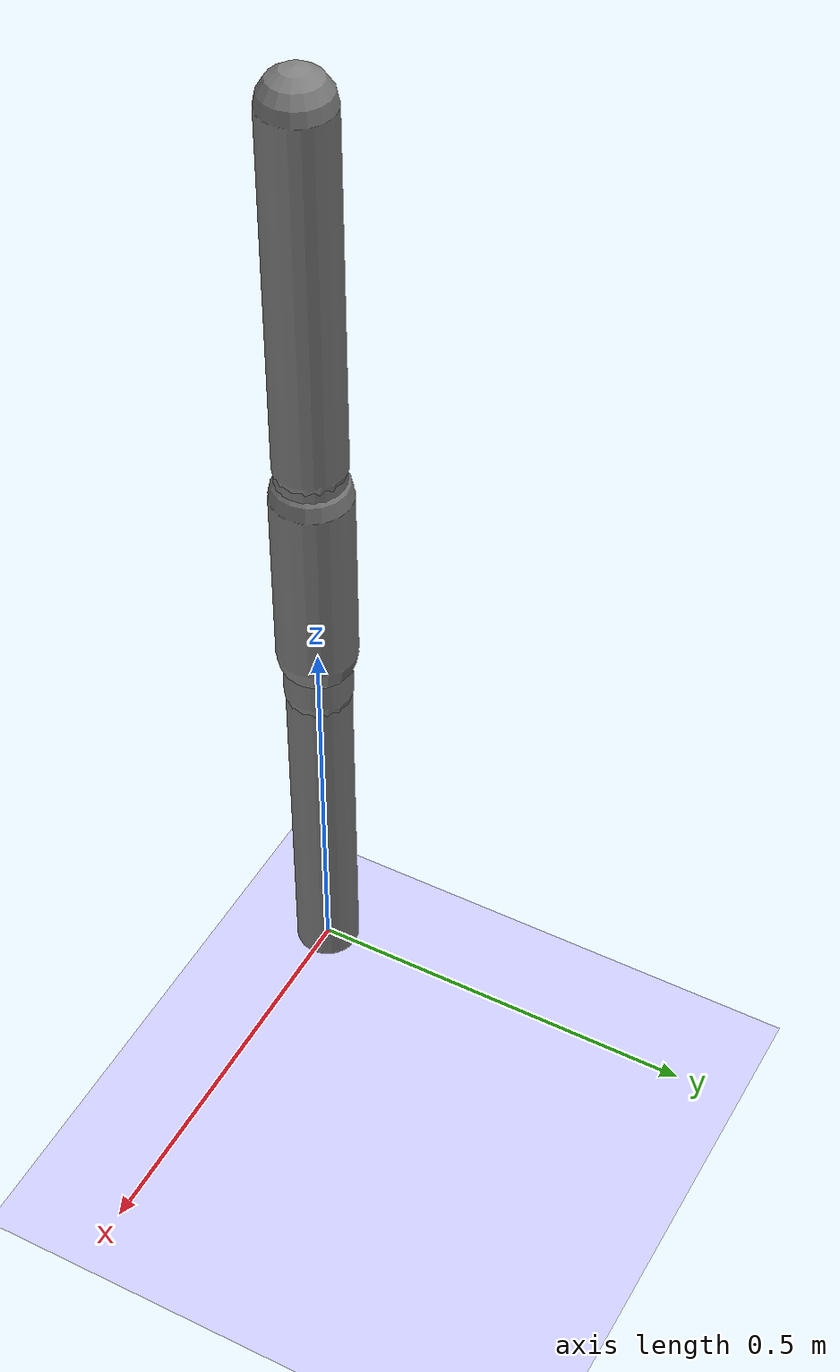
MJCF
<?xml version='1.0' encoding='UTF-8'?>
<mujoco model="robot_model">
  <worldbody>
    <light name="light" pos="0 -3 10" dir="0 0.5 -1" diffuse=".8 .8 .8" specular="0.1 0.1 0.1"/>
    <geom name="floor" type="plane" size="10.0 10.0 0.1" pos="0 0 0" rgba="0.8 0.8 1 1" contype="2" conaffinity="1"/>
    <body name="limb0" pos="0 0 0">
      <geom type="capsule" fromto="0 0 0 0 0 0.5389310855862122" size="0.04" density="1042.7771761579759" contype="1" conaffinity="2"/>
      <site type="sphere" size="0.01" name="limb0_site0" pos="0 0 0.3484966611289094"/>
      <freejoint name="limb0_root"/>
      <body name="limb1" pos="0 0 0.3484966611289094">
        <geom type="capsule" fromto="0 0 0 0 0 0.2639757366326131" size="0.03303782304059255" density="616.6153958948047" contype="1" conaffinity="2"/>
        <site type="sphere" size="0.01" name="limb1_site0" pos="0 0 0.16469519644951955"/>
        <site type="sphere" size="0.01" name="limb1_site1" pos="0 0 0.10105994540977413"/>
        <body name="limb2" pos="0 0 0.16469519644951955">
          <geom type="capsule" fromto="0 0 0 0 0 0.23785756650714102" size="0.049138871714439904" density="645.8772761445443" contype="1" conaffinity="2"/>
          <joint name="joint_limb1_limb2_0" type="hinge" axis="0 1 0" range="-79.19027832141104 79.19027832141104" damping="5.0"/>
        </body>
        <body name="limb3" pos="0 0 0.10105994540977413">
          <geom type="capsule" fromto="0 0 0 0 0 0.3449366956007403" size="0.04182995516077146" density="888.638751137447" contype="1" conaffinity="2"/>
          <site type="sphere" size="0.01" name="limb3_site0" pos="0 0 0.34476469369601037"/>
          <site type="sphere" size="0.01" name="limb3_site1" pos="0 0 0.19260695635808817"/>
          <site type="sphere" size="0.01" name="limb3_site2" pos="0 0 0.3040746823714669"/>
          <body name="limb4" pos="0 0 0.34476469369601037">
            <geom type="capsule" fromto="0 0 0 0 0 0.4579169144661851" size="0.043399013554505164" density="943.4953323994341" contype="1" conaffinity="2"/>
            <joint name="joint_limb3_limb4_0" type="hinge" axis="0 1 0" range="-116.04726021765768 116.04726021765768" damping="5.0"/>
          </body>
          <body name="limb5" pos="0 0 0.19260695635808817">
            <geom type="capsule" fromto="0 0 0 0 0 0.2102868528065015" size="0.03451406520881031" density="566.487314585425" contype="1" conaffinity="2"/>
            <joint name="joint_limb3_limb5_0" type="hinge" axis="0 1 0" range="-104.94540138861841 104.94540138861841" damping="5.0"/>
          </body>
          <body name="limb6" pos="0 0 0.3040746823714669">
            <geom type="capsule" fromto="0 0 0 0 0 0.4558236432736898" size="0.040393786555888975" density="1054.6511241400187" contype="1" conaffinity="2"/>
            <joint name="joint_limb3_limb6_0" type="hinge" axis="1 0 0" range="-120.0 120.0" damping="5.0"/>
          </body>
          <joint name="joint_limb1_limb3_0" type="hinge" axis="0 1 0" range="-84.37282476408203 84.37282476408203" damping="5.0"/>
        </body>
        <joint name="joint_limb0_limb1_0" type="hinge" axis="0 1 0" range="-89.53684670583189 89.53684670583189" damping="5.0"/>
      </body>
    </body>
  </worldbody>
  <actuator>
    <position name="position_actuator_joint_limb0_limb1_0" joint="joint_limb0_limb1_0" gear="1.1522482362826674" inheritrange="1" kp="10.0"/>
    <position name="position_actuator_joint_limb1_limb2_0" joint="joint_limb1_limb2_0" gear="1.0104857860709995" inheritrange="1" kp="10.0"/>
    <position name="position_actuator_joint_limb1_limb3_0" joint="joint_limb1_limb3_0" gear="2.0" inheritrange="1" kp="10.0"/>
    <position name="position_actuator_joint_limb3_limb4_0" joint="joint_limb3_limb4_0" gear="1.839604132232704" inheritrange="1" kp="10.0"/>
    <position name="position_actuator_joint_limb3_limb5_0" joint="joint_limb3_limb5_0" gear="1.0887960667114218" inheritrange="1" kp="10.0"/>
    <position name="position_actuator_joint_limb3_limb6_0" joint="joint_limb3_limb6_0" gear="1.791315759285747" inheritrange="1" kp="10.0"/>
  </actuator>
</mujoco>
